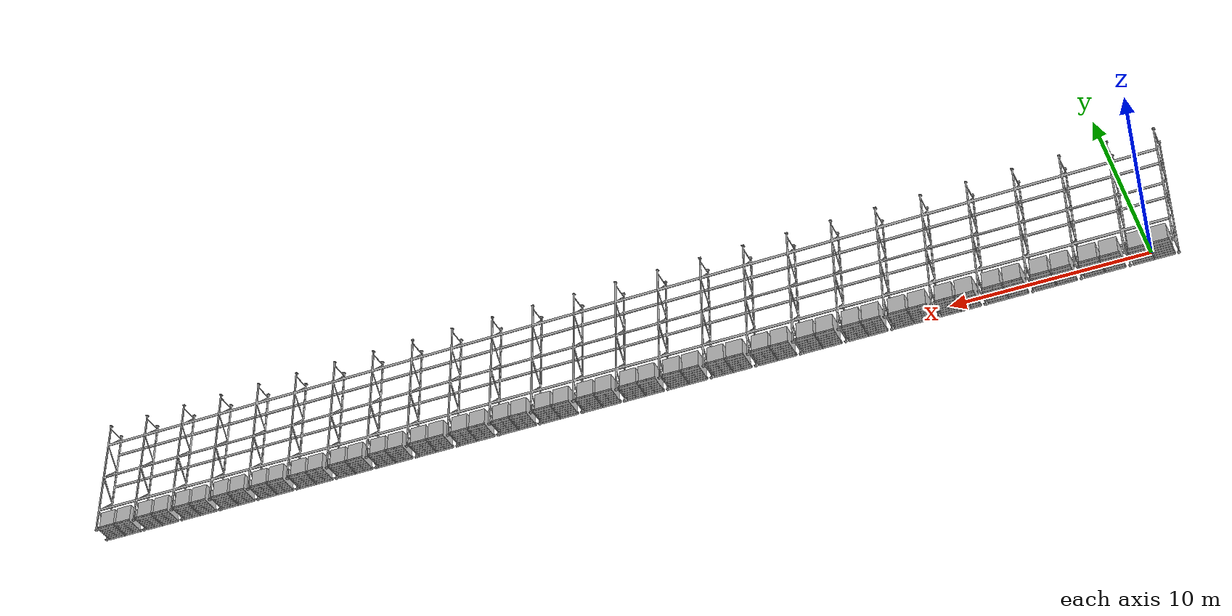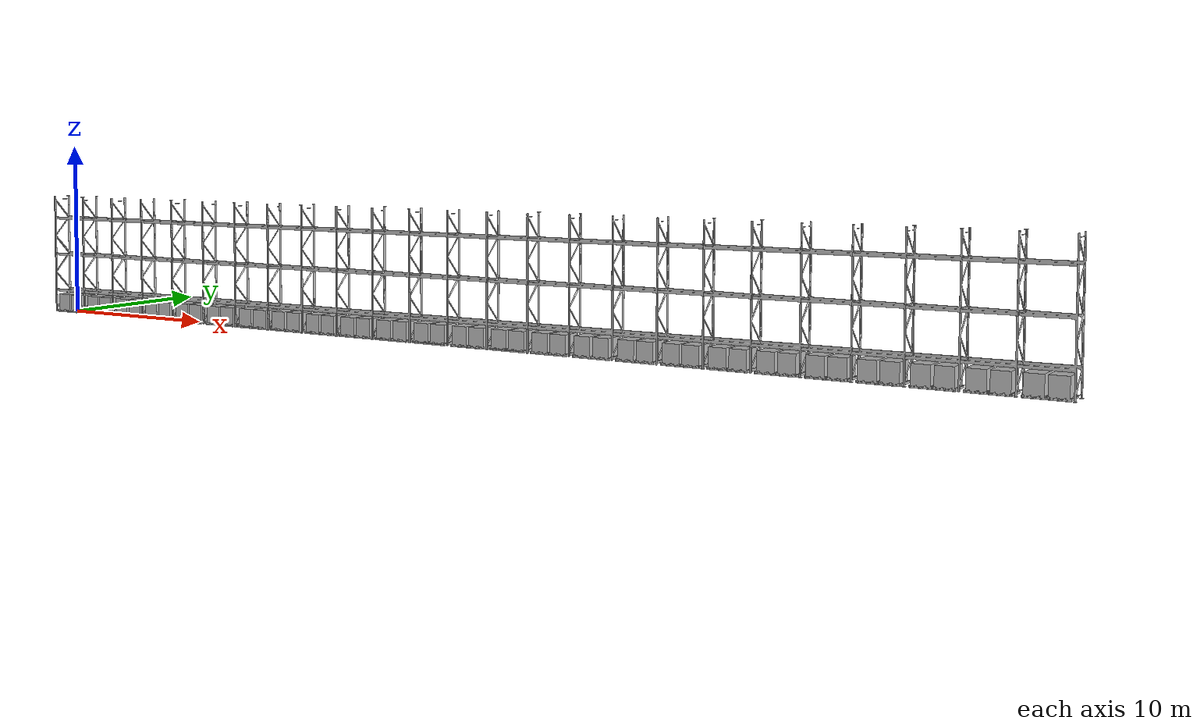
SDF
<?xml version='1.0' encoding='UTF-8'?>

<sdf version="1.6">
  <model name="Warehouse_Shelf">

    <include>
      <name>Shelf_Side_0</name>
      <uri>model://Shelf_Side</uri>
      <pose>-1.2025 0.0 0 0 0 0</pose>
    </include>

    <include>
      <name>Shelf_Unit_0</name>
      <uri>model://Shelf_Unit</uri>
      <pose> 0.0 0.0 0 0 0 0</pose>
    </include>

    <include>
      <name>Crate_0_0_0</name>
      <uri>model://Crate</uri>
      <pose> 0.518 0.0 0 0 0 0</pose>
    </include>

    <include>
      <name>Crate_1_0_0</name>
      <uri>model://Crate</uri>
      <pose> -0.518 0.0 0 0 0 0</pose>
    </include>

    <include>
      <name>Shelf_Unit_1</name>
      <uri>model://Shelf_Unit</uri>
      <pose> 2.405 0.0 0 0 0 0</pose>
    </include>

    <include>
      <name>Crate_0_0_1</name>
      <uri>model://Crate</uri>
      <pose> 2.923 0.0 0 0 0 0</pose>
    </include>

    <include>
      <name>Crate_1_0_1</name>
      <uri>model://Crate</uri>
      <pose> 1.8869999999999998 0.0 0 0 0 0</pose>
    </include>

    <include>
      <name>Shelf_Unit_2</name>
      <uri>model://Shelf_Unit</uri>
      <pose> 4.81 0.0 0 0 0 0</pose>
    </include>

    <include>
      <name>Crate_0_0_2</name>
      <uri>model://Crate</uri>
      <pose> 5.327999999999999 0.0 0 0 0 0</pose>
    </include>

    <include>
      <name>Crate_1_0_2</name>
      <uri>model://Crate</uri>
      <pose> 4.292 0.0 0 0 0 0</pose>
    </include>

    <include>
      <name>Shelf_Unit_3</name>
      <uri>model://Shelf_Unit</uri>
      <pose> 7.215 0.0 0 0 0 0</pose>
    </include>

    <include>
      <name>Crate_0_0_3</name>
      <uri>model://Crate</uri>
      <pose> 7.733 0.0 0 0 0 0</pose>
    </include>

    <include>
      <name>Crate_1_0_3</name>
      <uri>model://Crate</uri>
      <pose> 6.697 0.0 0 0 0 0</pose>
    </include>

    <include>
      <name>Shelf_Unit_4</name>
      <uri>model://Shelf_Unit</uri>
      <pose> 9.62 0.0 0 0 0 0</pose>
    </include>

    <include>
      <name>Crate_0_0_4</name>
      <uri>model://Crate</uri>
      <pose> 10.138 0.0 0 0 0 0</pose>
    </include>

    <include>
      <name>Crate_1_0_4</name>
      <uri>model://Crate</uri>
      <pose> 9.101999999999999 0.0 0 0 0 0</pose>
    </include>

    <include>
      <name>Shelf_Unit_5</name>
      <uri>model://Shelf_Unit</uri>
      <pose> 12.024999999999999 0.0 0 0 0 0</pose>
    </include>

    <include>
      <name>Crate_0_0_5</name>
      <uri>model://Crate</uri>
      <pose> 12.543 0.0 0 0 0 0</pose>
    </include>

    <include>
      <name>Crate_1_0_5</name>
      <uri>model://Crate</uri>
      <pose> 11.506999999999998 0.0 0 0 0 0</pose>
    </include>

    <include>
      <name>Shelf_Unit_6</name>
      <uri>model://Shelf_Unit</uri>
      <pose> 14.43 0.0 0 0 0 0</pose>
    </include>

    <include>
      <name>Crate_0_0_6</name>
      <uri>model://Crate</uri>
      <pose> 14.948 0.0 0 0 0 0</pose>
    </include>

    <include>
      <name>Crate_1_0_6</name>
      <uri>model://Crate</uri>
      <pose> 13.911999999999999 0.0 0 0 0 0</pose>
    </include>

    <include>
      <name>Shelf_Unit_7</name>
      <uri>model://Shelf_Unit</uri>
      <pose> 16.834999999999997 0.0 0 0 0 0</pose>
    </include>

    <include>
      <name>Crate_0_0_7</name>
      <uri>model://Crate</uri>
      <pose> 17.352999999999998 0.0 0 0 0 0</pose>
    </include>

    <include>
      <name>Crate_1_0_7</name>
      <uri>model://Crate</uri>
      <pose> 16.316999999999997 0.0 0 0 0 0</pose>
    </include>

    <include>
      <name>Shelf_Unit_8</name>
      <uri>model://Shelf_Unit</uri>
      <pose> 19.24 0.0 0 0 0 0</pose>
    </include>

    <include>
      <name>Crate_0_0_8</name>
      <uri>model://Crate</uri>
      <pose> 19.758 0.0 0 0 0 0</pose>
    </include>

    <include>
      <name>Crate_1_0_8</name>
      <uri>model://Crate</uri>
      <pose> 18.721999999999998 0.0 0 0 0 0</pose>
    </include>

    <include>
      <name>Shelf_Unit_9</name>
      <uri>model://Shelf_Unit</uri>
      <pose> 21.645 0.0 0 0 0 0</pose>
    </include>

    <include>
      <name>Crate_0_0_9</name>
      <uri>model://Crate</uri>
      <pose> 22.163 0.0 0 0 0 0</pose>
    </include>

    <include>
      <name>Crate_1_0_9</name>
      <uri>model://Crate</uri>
      <pose> 21.127 0.0 0 0 0 0</pose>
    </include>

    <include>
      <name>Shelf_Unit_10</name>
      <uri>model://Shelf_Unit</uri>
      <pose> 24.049999999999997 0.0 0 0 0 0</pose>
    </include>

    <include>
      <name>Crate_0_0_10</name>
      <uri>model://Crate</uri>
      <pose> 24.567999999999998 0.0 0 0 0 0</pose>
    </include>

    <include>
      <name>Crate_1_0_10</name>
      <uri>model://Crate</uri>
      <pose> 23.531999999999996 0.0 0 0 0 0</pose>
    </include>

    <include>
      <name>Shelf_Unit_11</name>
      <uri>model://Shelf_Unit</uri>
      <pose> 26.455 0.0 0 0 0 0</pose>
    </include>

    <include>
      <name>Crate_0_0_11</name>
      <uri>model://Crate</uri>
      <pose> 26.973 0.0 0 0 0 0</pose>
    </include>

    <include>
      <name>Crate_1_0_11</name>
      <uri>model://Crate</uri>
      <pose> 25.936999999999998 0.0 0 0 0 0</pose>
    </include>

    <include>
      <name>Shelf_Unit_12</name>
      <uri>model://Shelf_Unit</uri>
      <pose> 28.86 0.0 0 0 0 0</pose>
    </include>

    <include>
      <name>Crate_0_0_12</name>
      <uri>model://Crate</uri>
      <pose> 29.378 0.0 0 0 0 0</pose>
    </include>

    <include>
      <name>Crate_1_0_12</name>
      <uri>model://Crate</uri>
      <pose> 28.342 0.0 0 0 0 0</pose>
    </include>

    <include>
      <name>Shelf_Unit_13</name>
      <uri>model://Shelf_Unit</uri>
      <pose> 31.264999999999997 0.0 0 0 0 0</pose>
    </include>

    <include>
      <name>Crate_0_0_13</name>
      <uri>model://Crate</uri>
      <pose> 31.782999999999998 0.0 0 0 0 0</pose>
    </include>

    <include>
      <name>Crate_1_0_13</name>
      <uri>model://Crate</uri>
      <pose> 30.746999999999996 0.0 0 0 0 0</pose>
    </include>

    <include>
      <name>Shelf_Unit_14</name>
      <uri>model://Shelf_Unit</uri>
      <pose> 33.669999999999995 0.0 0 0 0 0</pose>
    </include>

    <include>
      <name>Crate_0_0_14</name>
      <uri>model://Crate</uri>
      <pose> 34.187999999999995 0.0 0 0 0 0</pose>
    </include>

    <include>
      <name>Crate_1_0_14</name>
      <uri>model://Crate</uri>
      <pose> 33.151999999999994 0.0 0 0 0 0</pose>
    </include>

    <include>
      <name>Shelf_Unit_15</name>
      <uri>model://Shelf_Unit</uri>
      <pose> 36.074999999999996 0.0 0 0 0 0</pose>
    </include>

    <include>
      <name>Crate_0_0_15</name>
      <uri>model://Crate</uri>
      <pose> 36.592999999999996 0.0 0 0 0 0</pose>
    </include>

    <include>
      <name>Crate_1_0_15</name>
      <uri>model://Crate</uri>
      <pose> 35.556999999999995 0.0 0 0 0 0</pose>
    </include>

    <include>
      <name>Shelf_Unit_16</name>
      <uri>model://Shelf_Unit</uri>
      <pose> 38.48 0.0 0 0 0 0</pose>
    </include>

    <include>
      <name>Crate_0_0_16</name>
      <uri>model://Crate</uri>
      <pose> 38.998 0.0 0 0 0 0</pose>
    </include>

    <include>
      <name>Crate_1_0_16</name>
      <uri>model://Crate</uri>
      <pose> 37.961999999999996 0.0 0 0 0 0</pose>
    </include>

    <include>
      <name>Shelf_Unit_17</name>
      <uri>model://Shelf_Unit</uri>
      <pose> 40.885 0.0 0 0 0 0</pose>
    </include>

    <include>
      <name>Crate_0_0_17</name>
      <uri>model://Crate</uri>
      <pose> 41.403 0.0 0 0 0 0</pose>
    </include>

    <include>
      <name>Crate_1_0_17</name>
      <uri>model://Crate</uri>
      <pose> 40.367 0.0 0 0 0 0</pose>
    </include>

    <include>
      <name>Shelf_Unit_18</name>
      <uri>model://Shelf_Unit</uri>
      <pose> 43.29 0.0 0 0 0 0</pose>
    </include>

    <include>
      <name>Crate_0_0_18</name>
      <uri>model://Crate</uri>
      <pose> 43.808 0.0 0 0 0 0</pose>
    </include>

    <include>
      <name>Crate_1_0_18</name>
      <uri>model://Crate</uri>
      <pose> 42.772 0.0 0 0 0 0</pose>
    </include>

    <include>
      <name>Shelf_Unit_19</name>
      <uri>model://Shelf_Unit</uri>
      <pose> 45.69499999999999 0.0 0 0 0 0</pose>
    </include>

    <include>
      <name>Crate_0_0_19</name>
      <uri>model://Crate</uri>
      <pose> 46.212999999999994 0.0 0 0 0 0</pose>
    </include>

    <include>
      <name>Crate_1_0_19</name>
      <uri>model://Crate</uri>
      <pose> 45.17699999999999 0.0 0 0 0 0</pose>
    </include>

    <include>
      <name>Shelf_Unit_20</name>
      <uri>model://Shelf_Unit</uri>
      <pose> 48.099999999999994 0.0 0 0 0 0</pose>
    </include>

    <include>
      <name>Crate_0_0_20</name>
      <uri>model://Crate</uri>
      <pose> 48.617999999999995 0.0 0 0 0 0</pose>
    </include>

    <include>
      <name>Crate_1_0_20</name>
      <uri>model://Crate</uri>
      <pose> 47.581999999999994 0.0 0 0 0 0</pose>
    </include>

    <include>
      <name>Shelf_Unit_21</name>
      <uri>model://Shelf_Unit</uri>
      <pose> 50.504999999999995 0.0 0 0 0 0</pose>
    </include>

    <include>
      <name>Crate_0_0_21</name>
      <uri>model://Crate</uri>
      <pose> 51.022999999999996 0.0 0 0 0 0</pose>
    </include>

    <include>
      <name>Crate_1_0_21</name>
      <uri>model://Crate</uri>
      <pose> 49.986999999999995 0.0 0 0 0 0</pose>
    </include>

    <include>
      <name>Shelf_Unit_22</name>
      <uri>model://Shelf_Unit</uri>
      <pose> 52.91 0.0 0 0 0 0</pose>
    </include>

    <include>
      <name>Crate_0_0_22</name>
      <uri>model://Crate</uri>
      <pose> 53.428 0.0 0 0 0 0</pose>
    </include>

    <include>
      <name>Crate_1_0_22</name>
      <uri>model://Crate</uri>
      <pose> 52.391999999999996 0.0 0 0 0 0</pose>
    </include>

    <include>
      <name>Shelf_Unit_23</name>
      <uri>model://Shelf_Unit</uri>
      <pose> 55.315 0.0 0 0 0 0</pose>
    </include>

    <include>
      <name>Crate_0_0_23</name>
      <uri>model://Crate</uri>
      <pose> 55.833 0.0 0 0 0 0</pose>
    </include>

    <include>
      <name>Crate_1_0_23</name>
      <uri>model://Crate</uri>
      <pose> 54.797 0.0 0 0 0 0</pose>
    </include>

    <include>
      <name>Shelf_Unit_24</name>
      <uri>model://Shelf_Unit</uri>
      <pose> 57.72 0.0 0 0 0 0</pose>
    </include>

    <include>
      <name>Crate_0_0_24</name>
      <uri>model://Crate</uri>
      <pose> 58.238 0.0 0 0 0 0</pose>
    </include>

    <include>
      <name>Crate_1_0_24</name>
      <uri>model://Crate</uri>
      <pose> 57.202 0.0 0 0 0 0</pose>
    </include>

  </model>
</sdf>

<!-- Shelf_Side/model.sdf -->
<sdf version='1.6'>
  <model name='Shelf_Side'>
    <link name='shelf_side'>
      <pose frame=''>0 0 3.504 0 -0 0</pose>
      <inertial>
        <mass>10</mass>
        <inertia>
          <ixx>42.2684</ixx>
          <ixy>0</ixy>
          <ixz>0</ixz>
          <iyy>40.944</iyy>
          <iyz>0</iyz>
          <izz>1.35897</izz>
        </inertia>
      </inertial>
      <gravity>1</gravity>
      <self_collide>0</self_collide>
      <kinematic>0</kinematic>
      <enable_wind>0</enable_wind>
      <visual name='visual'>
        <pose frame=''>0 0 0 0 0 0</pose>
        <geometry>
          <mesh>
            <uri>model://Shelf_Side/meshes/Shelf Side Simplified.dae</uri>
          </mesh>
        </geometry>
        <transparency>0</transparency>
        <cast_shadows>0</cast_shadows>
      </visual>
      <collision name='collision'>
        <laser_retro>0</laser_retro>
        <pose frame=''>0 0 0 0 0 0</pose>
        <geometry>
          <mesh>
            <uri>model://Shelf_Side/meshes/Shelf Side Simplified.stl</uri>
          </mesh>
        </geometry>
      </collision>
    </link>
    <static>1</static>
  </model>
</sdf>

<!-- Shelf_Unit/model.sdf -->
<sdf version='1.6'>
  <model name='Shelf_Unit'>
    <link name='shelf_unit'>
      <pose frame=''>0 0 3.504 0 -0 0</pose>
      <inertial>
        <mass>100</mass>
        <inertia>
          <ixx>418.416</ixx>
          <ixy>0</ixy>
          <ixz>0</ixz>
          <iyy>460.293</iyy>
          <iyz>0</iyz>
          <izz>60.1749</izz>
        </inertia>
      </inertial>
      <gravity>1</gravity>
      <self_collide>0</self_collide>
      <kinematic>0</kinematic>
      <enable_wind>0</enable_wind>
      <visual name='visual'>
        <pose frame=''>0 0 0 0 -0 0</pose>
        <geometry>
          <mesh>
            <uri>model://Shelf_Unit/meshes/Shelf Unit Ultra Simplified.dae</uri>
          </mesh>
        </geometry>
        <transparency>0</transparency>
        <cast_shadows>0</cast_shadows>
      </visual>
      <collision name='collision'>
        <laser_retro>0</laser_retro>
        <pose frame=''>0 0 0 0 0 0</pose>
        <geometry>
          <mesh>
            <uri>model://Shelf_Unit/meshes/Shelf Unit Ultra Simplified.stl</uri>
          </mesh>
        </geometry>
      </collision>
    </link>
    <static>1</static>
  </model>
</sdf>

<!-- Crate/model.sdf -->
<sdf version='1.6'>
  <model name='Crate'>
    <link name='crate'>
      <pose frame=''>0 0 0.535 0 -0 0</pose>
      <inertial>
        <mass>10</mass>
        <inertia>
          <ixx>5</ixx>
          <ixy>0</ixy>
          <ixz>0</ixz>
          <iyy>5</iyy>
          <iyz>0</iyz>
          <izz>5</izz>
        </inertia>
      </inertial>
      <gravity>1</gravity>
      <self_collide>0</self_collide>
      <kinematic>0</kinematic>
      <enable_wind>0</enable_wind>
      <visual name='visual'>
        <pose frame=''>0 0 0 0 0 0</pose>
        <geometry>
          <mesh>
            <uri>model://Crate/meshes/crate_flipped_.dae</uri>
          </mesh>
        </geometry>
        <transparency>0</transparency>
        <cast_shadows>0</cast_shadows>
      </visual>
      <collision name='collision'>
        <laser_retro>0</laser_retro>
        <pose frame=''>0 0 0 0 0 0</pose>
        <geometry>
          <mesh>
            <uri>model://Crate/meshes/crate_flipped_.stl</uri>
          </mesh>
        </geometry>
      </collision>
    </link>
    <static>1</static>
  </model>
</sdf>
